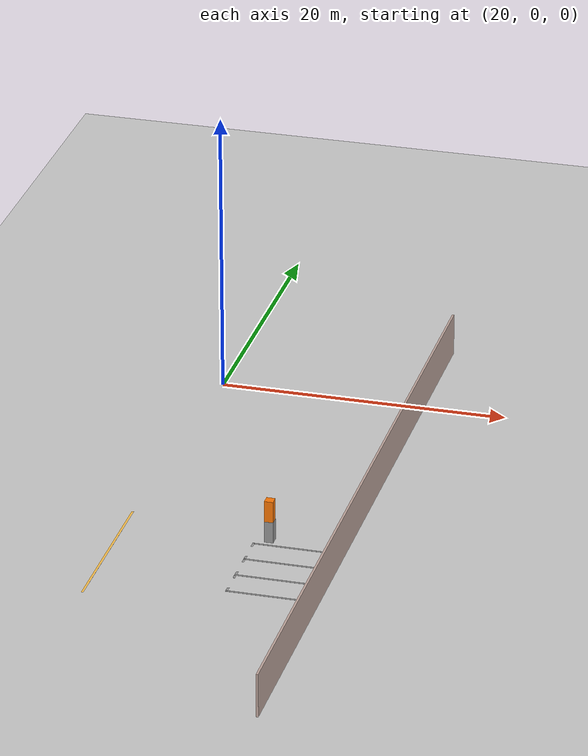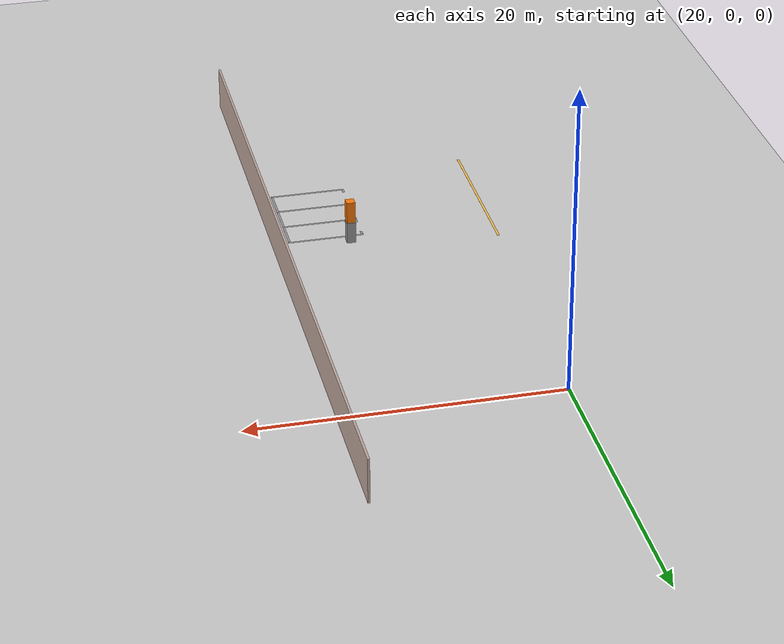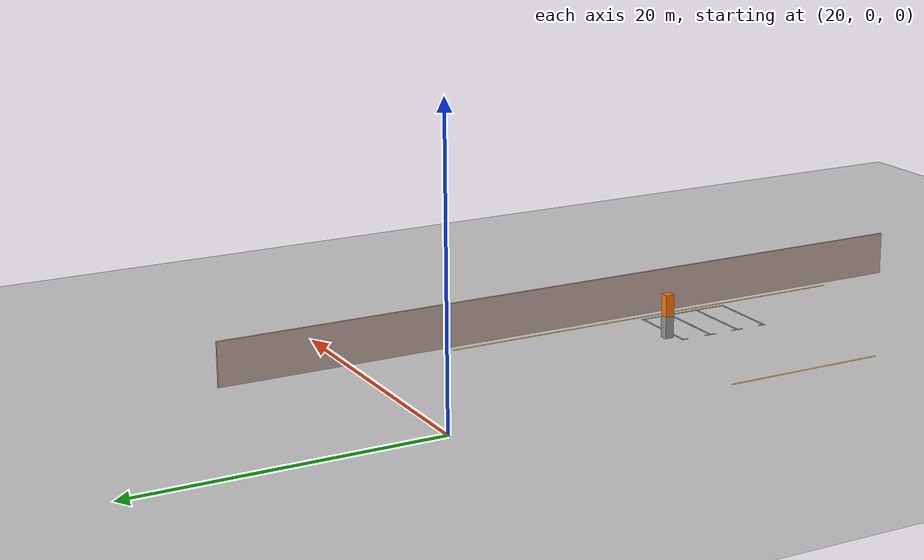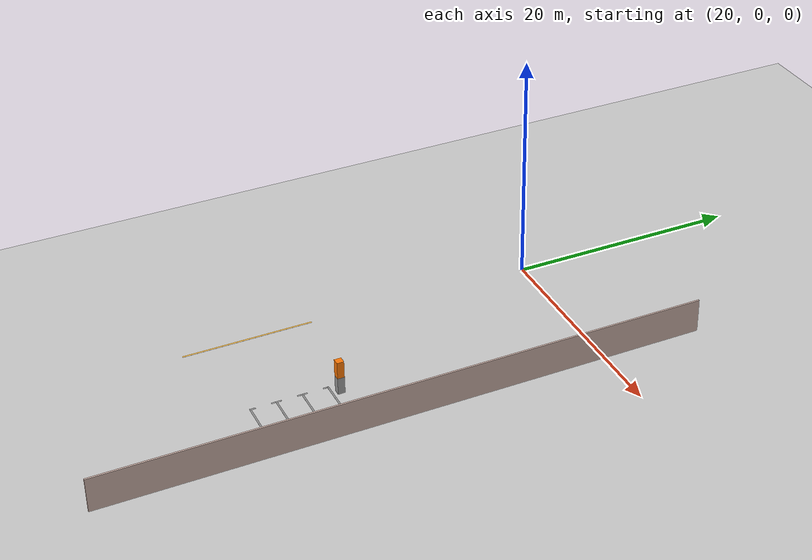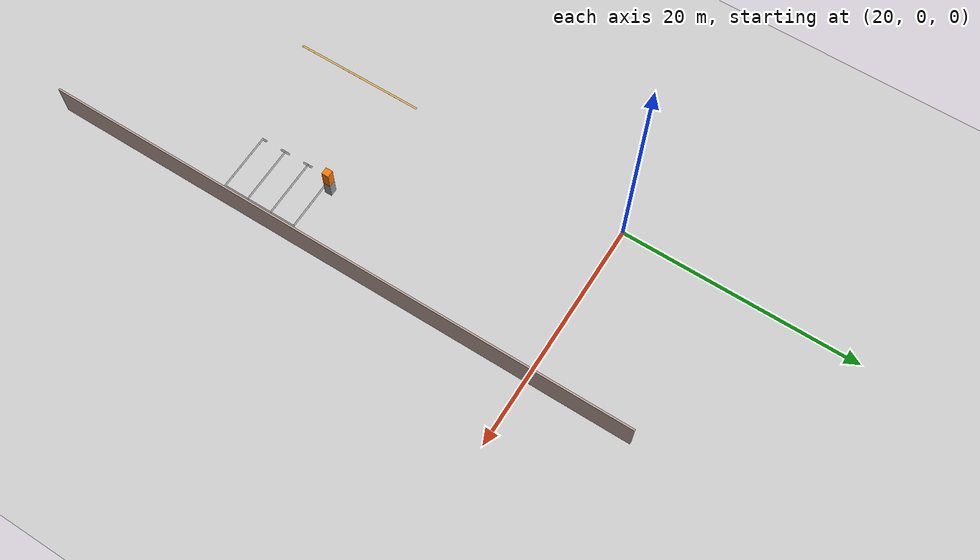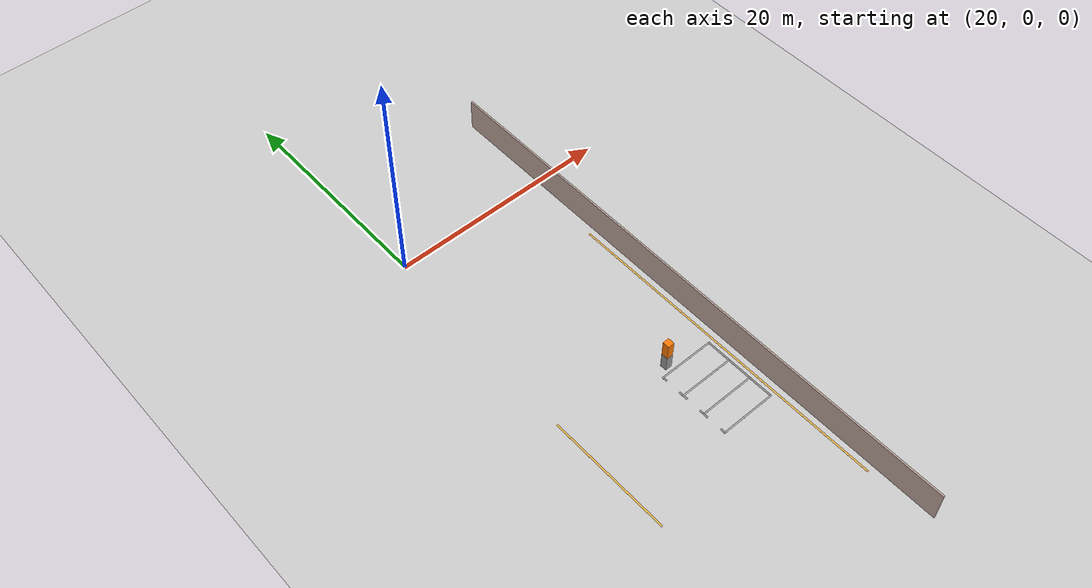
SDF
<sdf version="1.7">
 <world name="default">
  <model name="ground_plane">
   <static>1</static>
   <link name="link">
    <collision name="collision">
     <geometry><plane><normal>0 0 1</normal><size>100 100</size></plane></geometry>
     <surface><friction><ode><mu>100</mu><mu2>50</mu2></ode></friction></surface>
    </collision>
    <visual name="visual">
     <cast_shadows>0</cast_shadows>
     <geometry><plane><normal>0 0 1</normal><size>100 100</size></plane></geometry>
     <material>
      <script><uri>file://media/materials/scripts/gazebo.material</uri><name>Gazebo/Grey</name></script>
     </material>
    </visual>
   </link>
  </model>
  <model name="line_yellow_11m_clone_clone">
   <pose>41.7156 -23.692 0 0 -0 0</pose>
   <link name="Wall_6">
    <collision name="Wall_6_Collision">
     <geometry><box><size>11.2 0.15 0.005</size></box></geometry>
     <pose>0 0 0.0025 0 -0 0</pose>
    </collision>
    <visual name="Wall_6_Visual">
     <pose>0 0 0.0025 0 -0 0</pose>
     <geometry><box><size>11.2 0.15 0.005</size></box></geometry>
     <material>
      <script><uri>file://media/materials/scripts/gazebo.material</uri><name>Gazebo/Grey</name></script>
      <ambient>1 0.764706 0.305882 1</ambient>
     </material>
     <meta><layer>0</layer></meta>
    </visual>
    <pose>-22.4467 -1.27025 0 0 -0 -1.5708</pose>
   </link>
   <static>1</static>
  </model>
  <model name="carport1_2_clone_1_clone_clone_1">
   <pose>32.3458 -24.3619 0 0 0 -1.57043</pose>
   <link name="Wall_105">
    <collision name="Wall_105_Collision">
     <geometry><box><size>0.61 0.6 1.5</size></box></geometry>
     <pose>0 0 0.75 0 -0 0</pose>
    </collision>
    <visual name="Wall_105_Visual">
     <pose>0 0 0.75 0 -0 0</pose>
     <geometry><box><size>0.61 0.6 1.5</size></box></geometry>
     <material>
      <script><uri>file://media/materials/scripts/gazebo.material</uri><name>Gazebo/Grey</name></script>
      <ambient>1 1 1 1</ambient>
     </material>
     <meta><layer>0</layer></meta>
    </visual>
    <pose>-3.47407 -3.2865 0 0 -0 0</pose>
   </link>
   <link name="Wall_116">
    <collision name="Wall_116_Collision">
     <geometry><box><size>5.1 0.15 0.005</size></box></geometry>
     <pose>0 0 0.0025 0 -0 0</pose>
    </collision>
    <visual name="Wall_116_Visual">
     <pose>0 0 0.0025 0 -0 0</pose>
     <geometry><box><size>5.1 0.15 0.005</size></box></geometry>
     <material>
      <script><uri>file://media/materials/scripts/gazebo.material</uri><name>Gazebo/Grey</name></script>
      <ambient>1 1 1 1</ambient>
     </material>
     <meta><layer>0</layer></meta>
    </visual>
    <pose>-2.82307 -1.7385 0 0 -0 1.5708</pose>
   </link>
   <link name="Wall_124">
    <collision name="Wall_124_Collision">
     <geometry><box><size>5.1 0.15 0.005</size></box></geometry>
     <pose>0 0 0.0025 0 -0 0</pose>
    </collision>
    <visual name="Wall_124_Visual">
     <pose>0 0 0.0025 0 -0 0</pose>
     <geometry><box><size>5.1 0.15 0.005</size></box></geometry>
     <material>
      <script><uri>file://media/materials/scripts/gazebo.material</uri><name>Gazebo/Grey</name></script>
      <ambient>1 1 1 1</ambient>
     </material>
     <meta><layer>0</layer></meta>
    </visual>
    <pose>3.70393 -1.7305 0 0 -0 1.5708</pose>
   </link>
   <link name="Wall_146">
    <collision name="Wall_146_Collision">
     <geometry><box><size>6.67711 0.15 0.005</size></box></geometry>
     <pose>0 0 0.0025 0 -0 0</pose>
    </collision>
    <visual name="Wall_146_Visual">
     <pose>0 0 0.0025 0 -0 0</pose>
     <geometry><box><size>6.67711 0.15 0.005</size></box></geometry>
     <material>
      <script><uri>file://media/materials/scripts/gazebo.material</uri><name>Gazebo/Grey</name></script>
      <ambient>1 1 1 1</ambient>
     </material>
     <meta><layer>0</layer></meta>
    </visual>
    <pose>0.440428 0.7405 0 0 -0 0.001226</pose>
   </link>
   <link name="Wall_168">
    <collision name="Wall_168_Collision">
     <geometry><box><size>5.1 0.15 0.005</size></box></geometry>
     <pose>0 0 0.0025 0 -0 0</pose>
    </collision>
    <visual name="Wall_168_Visual">
     <pose>0 0 0.0025 0 -0 0</pose>
     <geometry><box><size>5.1 0.15 0.005</size></box></geometry>
     <material>
      <script><uri>file://media/materials/scripts/gazebo.material</uri><name>Gazebo/Grey</name></script>
      <ambient>1 1 1 1</ambient>
     </material>
     <meta><layer>0</layer></meta>
    </visual>
    <pose>-0.64827 -1.73839 0 0 -0 1.57088</pose>
   </link>
   <link name="Wall_173">
    <collision name="Wall_173_Collision">
     <geometry><box><size>5.1 0.15 0.005</size></box></geometry>
     <pose>0 0 0.0025 0 -0 0</pose>
    </collision>
    <visual name="Wall_173_Visual">
     <pose>0 0 0.0025 0 -0 0</pose>
     <geometry><box><size>5.1 0.15 0.005</size></box></geometry>
     <material>
      <script><uri>file://media/materials/scripts/gazebo.material</uri><name>Gazebo/Grey</name></script>
      <ambient>1 1 1 1</ambient>
     </material>
     <meta><layer>0</layer></meta>
    </visual>
    <pose>1.52673 -1.73839 0 0 -0 1.57088</pose>
   </link>
   <link name="Wall_177">
    <collision name="Wall_177_Collision">
     <geometry><box><size>0.6 0.59 3</size></box></geometry>
     <pose>0 0 1.5 0 -0 0</pose>
    </collision>
    <visual name="Wall_177_Visual">
     <pose>0 0 1.5 0 -0 0</pose>
     <geometry><box><size>0.6 0.59 3</size></box></geometry>
     <material>
      <script><uri>file://media/materials/scripts/gazebo.material</uri><name>Gazebo/Grey</name></script>
      <ambient>0.996078 0.47451 0.0196078 1</ambient>
     </material>
     <meta><layer>0</layer></meta>
    </visual>
    <pose>-3.47407 -3.2865 0 0 -0 0</pose>
   </link>
   <link name="Wall_179">
    <collision name="Wall_179_Collision">
     <geometry><box><size>0.5 0.15 0.005</size></box></geometry>
     <pose>0 0 0.0025 0 -0 0</pose>
    </collision>
    <visual name="Wall_179_Visual">
     <pose>0 0 0.0025 0 -0 0</pose>
     <geometry><box><size>0.5 0.15 0.005</size></box></geometry>
     <material>
      <script><uri>file://media/materials/scripts/gazebo.material</uri><name>Gazebo/Grey</name></script>
      <ambient>1 1 1 1</ambient>
     </material>
     <meta><layer>0</layer></meta>
    </visual>
    <pose>-2.64807 -4.2135 0 0 -0 0</pose>
   </link>
   <link name="Wall_181">
    <collision name="Wall_181_Collision">
     <geometry><box><size>0.5 0.15 0.005</size></box></geometry>
     <pose>0 0 0.0025 0 -0 0</pose>
    </collision>
    <visual name="Wall_181_Visual">
     <pose>0 0 0.0025 0 -0 0</pose>
     <geometry><box><size>0.5 0.15 0.005</size></box></geometry>
     <material>
      <script><uri>file://media/materials/scripts/gazebo.material</uri><name>Gazebo/Grey</name></script>
      <ambient>1 1 1 1</ambient>
     </material>
     <meta><layer>0</layer></meta>
    </visual>
    <pose>-0.823072 -4.2135 0 0 -0 3.14159</pose>
   </link>
   <link name="Wall_183">
    <collision name="Wall_183_Collision">
     <geometry><box><size>0.5 0.15 0.005</size></box></geometry>
     <pose>0 0 0.0025 0 -0 0</pose>
    </collision>
    <visual name="Wall_183_Visual">
     <pose>0 0 0.0025 0 -0 0</pose>
     <geometry><box><size>0.5 0.15 0.005</size></box></geometry>
     <material>
      <script><uri>file://media/materials/scripts/gazebo.material</uri><name>Gazebo/Grey</name></script>
      <ambient>1 1 1 1</ambient>
     </material>
     <meta><layer>0</layer></meta>
    </visual>
    <pose>-0.473072 -4.2135 0 0 -0 0</pose>
   </link>
   <link name="Wall_185">
    <collision name="Wall_185_Collision">
     <geometry><box><size>0.5 0.15 0.005</size></box></geometry>
     <pose>0 0 0.0025 0 -0 0</pose>
    </collision>
    <visual name="Wall_185_Visual">
     <pose>0 0 0.0025 0 -0 0</pose>
     <geometry><box><size>0.5 0.15 0.005</size></box></geometry>
     <material>
      <script><uri>file://media/materials/scripts/gazebo.material</uri><name>Gazebo/Grey</name></script>
      <ambient>1 1 1 1</ambient>
     </material>
     <meta><layer>0</layer></meta>
    </visual>
    <pose>1.35193 -4.2135 0 0 -0 3.14159</pose>
   </link>
   <link name="Wall_187">
    <collision name="Wall_187_Collision">
     <geometry><box><size>0.5 0.15 0.005</size></box></geometry>
     <pose>0 0 0.0025 0 -0 0</pose>
    </collision>
    <visual name="Wall_187_Visual">
     <pose>0 0 0.0025 0 -0 0</pose>
     <geometry><box><size>0.5 0.15 0.005</size></box></geometry>
     <material>
      <script><uri>file://media/materials/scripts/gazebo.material</uri><name>Gazebo/Grey</name></script>
      <ambient>1 1 1 1</ambient>
     </material>
     <meta><layer>0</layer></meta>
    </visual>
    <pose>1.70193 -4.2135 0 0 -0 0</pose>
   </link>
   <link name="Wall_189">
    <collision name="Wall_189_Collision">
     <geometry><box><size>0.5 0.15 0.005</size></box></geometry>
     <pose>0 0 0.0025 0 -0 0</pose>
    </collision>
    <visual name="Wall_189_Visual">
     <pose>0 0 0.0025 0 -0 0</pose>
     <geometry><box><size>0.5 0.15 0.005</size></box></geometry>
     <material>
      <script><uri>file://media/materials/scripts/gazebo.material</uri><name>Gazebo/Grey</name></script>
      <ambient>1 1 1 1</ambient>
     </material>
     <meta><layer>0</layer></meta>
    </visual>
    <pose>3.52893 -4.2055 0 0 -0 3.14159</pose>
   </link>
   <static>1</static>
  </model>
  <model name="wall_51.5m_clone_clone_clone">
   <pose>53.7856 -16.9981 0 0 -0 0</pose>
   <link name="Wall_10">
    <collision name="Wall_10_Collision">
     <geometry><box><size>51.5 0.15 3</size></box></geometry>
     <pose>0 0 1.5 0 -0 0</pose>
    </collision>
    <visual name="Wall_10_Visual">
     <pose>0 0 1.5 0 -0 0</pose>
     <geometry><box><size>51.5 0.15 3</size></box></geometry>
     <material>
      <script><uri>file://media/materials/scripts/gazebo.material</uri><name>Gazebo/Grey</name></script>
      <ambient>0.760784 0.662745 0.627451 1</ambient>
     </material>
     <meta><layer>0</layer></meta>
    </visual>
    <pose>-19.5562 1e-06 0 0 -0 -1.5708</pose>
   </link>
   <static>1</static>
  </model>
  <model name="line_yellow_30m_clone_clone_1_clone_clone_clone">
   <pose>34.6583 -21.2538 0 0 -0 0</pose>
   <link name="Wall_0">
    <collision name="Wall_0_Collision">
     <geometry><box><size>30 0.15 0.005</size></box></geometry>
     <pose>0 0 0.0025 0 -0 0</pose>
    </collision>
    <visual name="Wall_0_Visual">
     <pose>0 0 0.0025 0 -0 0</pose>
     <geometry><box><size>30 0.15 0.005</size></box></geometry>
     <material>
      <script><uri>file://media/materials/scripts/gazebo.material</uri><name>Gazebo/Grey</name></script>
      <ambient>1 0.764706 0.305882 1</ambient>
     </material>
     <meta><layer>0</layer></meta>
    </visual>
    <pose>-1.0925 -0.9575 0 0 -0 -1.5708</pose>
   </link>
   <static>1</static>
  </model>
 </world>
</sdf>
